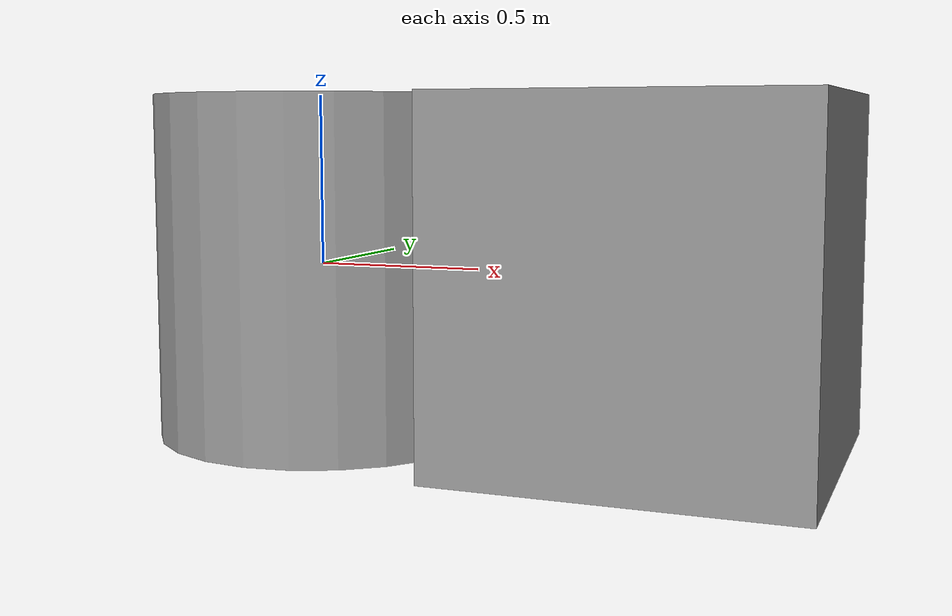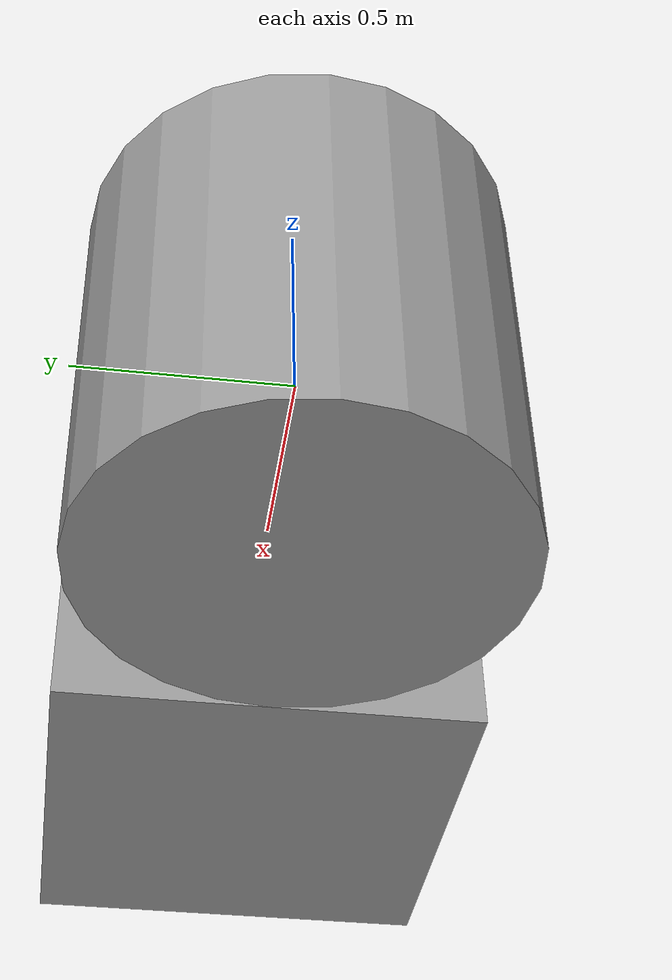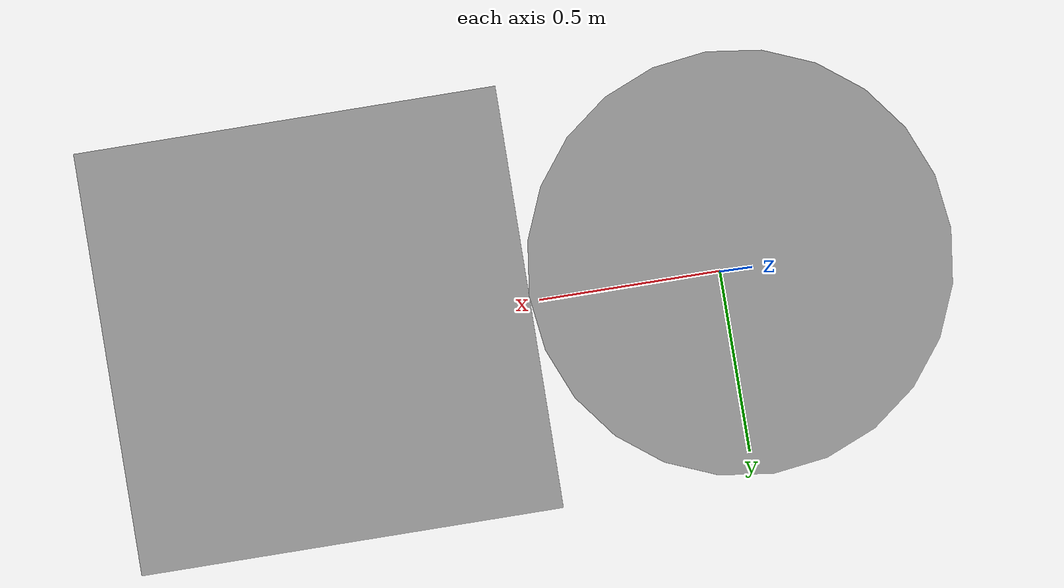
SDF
<?xml version='1.0'?>
<sdf version='1.6'>
  <model name='table'>
    <link name='link_0'>
      <pose frame=''>0.026362 -0.015071 3e-06 -3e-06 -4e-06 -0</pose>
      <inertial>
        <mass>50</mass>
        <inertia>
          <ixx>0.145833</ixx>
          <ixy>0</ixy>
          <ixz>0</ixz>
          <iyy>0.145833</iyy>
          <iyz>0</iyz>
          <izz>0.125</izz>
        </inertia>
        <pose frame=''>0 0 0 0 -0 0</pose>
      </inertial>
      <gravity>1</gravity>
      <self_collide>0</self_collide>
      <kinematic>0</kinematic>
      <visual name='visual'>
        <pose frame=''>0 0 0 0 -0 0</pose>
        <geometry>
          <cylinder>
            <radius>0.5</radius>
            <length>1</length>
          </cylinder>
        </geometry>
        <material>
          <lighting>1</lighting>
          <script>
            <uri>file://media/materials/scripts/gazebo.material</uri>
            <name>Gazebo/Grey</name>
          </script>
          <ambient>0.3 0.3 0.3 1</ambient>
          <diffuse>0.7 0.7 0.7 1</diffuse>
          <specular>0.01 0.01 0.01 1</specular>
          <emissive>0 0 0 1</emissive>
          <shader type='vertex'>
            <normal_map>__default__</normal_map>
          </shader>
        </material>
        <cast_shadows>1</cast_shadows>
        <transparency>0</transparency>
      </visual>
      <collision name='collision'>
        <laser_retro>0</laser_retro>
        <max_contacts>10</max_contacts>
        <pose frame=''>0 0 0 0 -0 0</pose>
        <geometry>
          <cylinder>
            <radius>0.5</radius>
            <length>1</length>
          </cylinder>
        </geometry>
        <surface>
          <friction>
            <ode>
              <mu>1</mu>
              <mu2>1</mu2>
              <fdir1>0 0 0</fdir1>
              <slip1>0</slip1>
              <slip2>0</slip2>
            </ode>
            <torsional>
              <coefficient>1</coefficient>
              <patch_radius>0</patch_radius>
              <surface_radius>0</surface_radius>
              <use_patch_radius>1</use_patch_radius>
              <ode>
                <slip>0</slip>
              </ode>
            </torsional>
          </friction>
          <bounce>
            <restitution_coefficient>0</restitution_coefficient>
            <threshold>1e+06</threshold>
          </bounce>
          <contact>
            <collide_without_contact>0</collide_without_contact>
            <collide_without_contact_bitmask>1</collide_without_contact_bitmask>
            <collide_bitmask>1</collide_bitmask>
            <ode>
              <soft_cfm>0</soft_cfm>
              <soft_erp>0.2</soft_erp>
              <kp>1e+13</kp>
              <kd>1</kd>
              <max_vel>0.01</max_vel>
              <min_depth>0</min_depth>
            </ode>
            <bullet>
              <split_impulse>1</split_impulse>
              <split_impulse_penetration_threshold>-0.01</split_impulse_penetration_threshold>
              <soft_cfm>0</soft_cfm>
              <soft_erp>0.2</soft_erp>
              <kp>1e+13</kp>
              <kd>1</kd>
            </bullet>
          </contact>
        </surface>
      </collision>
    </link>
    <link name='link_1'>
      <pose frame=''>1.02636 -0.015071 7e-06 -3e-06 -4e-06 -0</pose>
      <inertial>
        <mass>50</mass>
        <inertia>
          <ixx>0.166667</ixx>
          <ixy>0</ixy>
          <ixz>0</ixz>
          <iyy>0.166667</iyy>
          <iyz>0</iyz>
          <izz>0.166667</izz>
        </inertia>
        <pose frame=''>0 0 0 0 -0 0</pose>
      </inertial>
      <gravity>1</gravity>
      <self_collide>0</self_collide>
      <kinematic>0</kinematic>
      <visual name='visual'>
        <pose frame=''>0 0 0 0 -0 0</pose>
        <geometry>
          <box>
            <size>1 1 1</size>
          </box>
        </geometry>
        <material>
          <lighting>1</lighting>
          <script>
            <uri>file://media/materials/scripts/gazebo.material</uri>
            <name>Gazebo/Grey</name>
          </script>
          <ambient>0.3 0.3 0.3 1</ambient>
          <diffuse>0.7 0.7 0.7 1</diffuse>
          <specular>0.01 0.01 0.01 1</specular>
          <emissive>0 0 0 1</emissive>
          <shader type='vertex'>
            <normal_map>__default__</normal_map>
          </shader>
        </material>
        <cast_shadows>1</cast_shadows>
        <transparency>0</transparency>
      </visual>
      <collision name='collision'>
        <laser_retro>0</laser_retro>
        <max_contacts>10</max_contacts>
        <pose frame=''>0 0 0 0 -0 0</pose>
        <geometry>
          <box>
            <size>1 1 1</size>
          </box>
        </geometry>
        <surface>
          <friction>
            <ode>
              <mu>1</mu>
              <mu2>1</mu2>
              <fdir1>0 0 0</fdir1>
              <slip1>0</slip1>
              <slip2>0</slip2>
            </ode>
            <torsional>
              <coefficient>1</coefficient>
              <patch_radius>0</patch_radius>
              <surface_radius>0</surface_radius>
              <use_patch_radius>1</use_patch_radius>
              <ode>
                <slip>0</slip>
              </ode>
            </torsional>
          </friction>
          <bounce>
            <restitution_coefficient>0</restitution_coefficient>
            <threshold>1e+06</threshold>
          </bounce>
          <contact>
            <collide_without_contact>0</collide_without_contact>
            <collide_without_contact_bitmask>1</collide_without_contact_bitmask>
            <collide_bitmask>1</collide_bitmask>
            <ode>
              <soft_cfm>0</soft_cfm>
              <soft_erp>0.2</soft_erp>
              <kp>1e+13</kp>
              <kd>1</kd>
              <max_vel>0.01</max_vel>
              <min_depth>0</min_depth>
            </ode>
            <bullet>
              <split_impulse>1</split_impulse>
              <split_impulse_penetration_threshold>-0.01</split_impulse_penetration_threshold>
              <soft_cfm>0</soft_cfm>
              <soft_erp>0.2</soft_erp>
              <kp>1e+13</kp>
              <kd>1</kd>
            </bullet>
          </contact>
        </surface>
      </collision>
    </link>
    <static>1</static>
    <allow_auto_disable>1</allow_auto_disable>
  </model>
</sdf>
